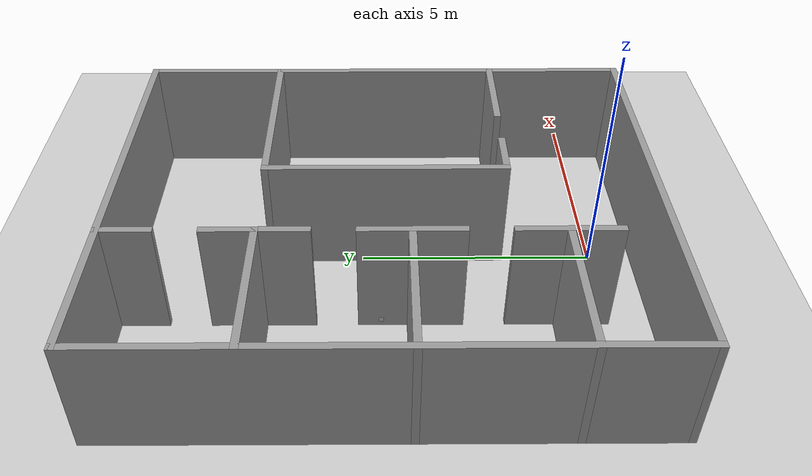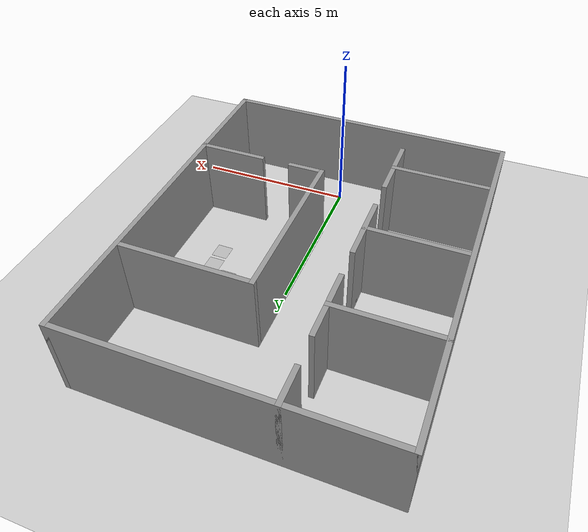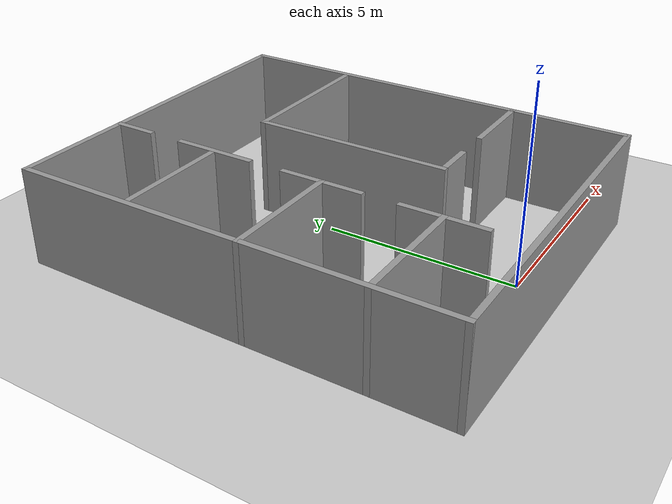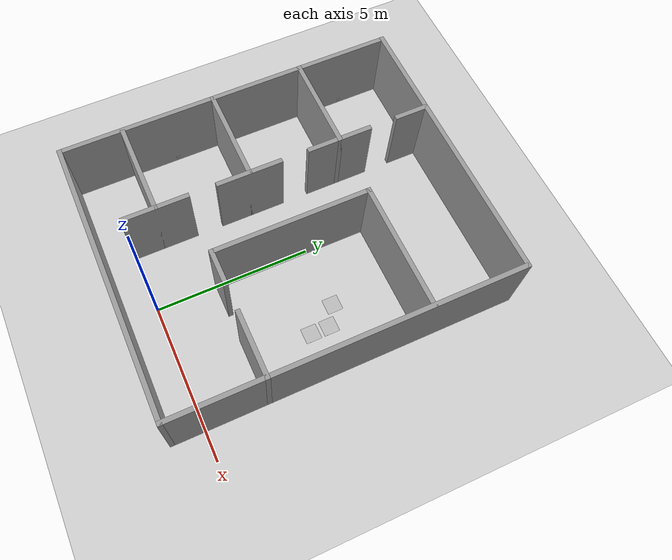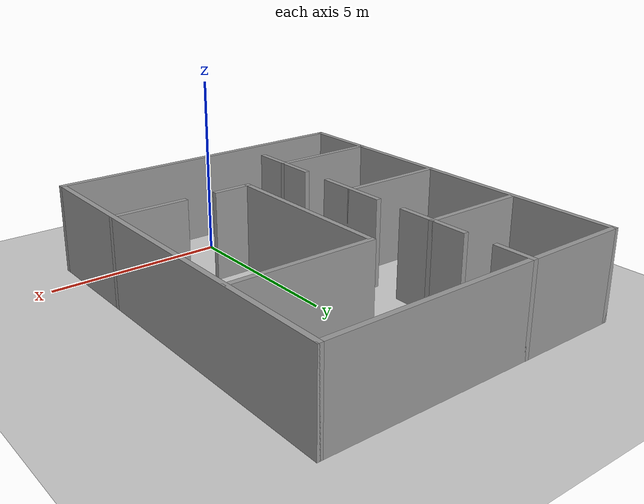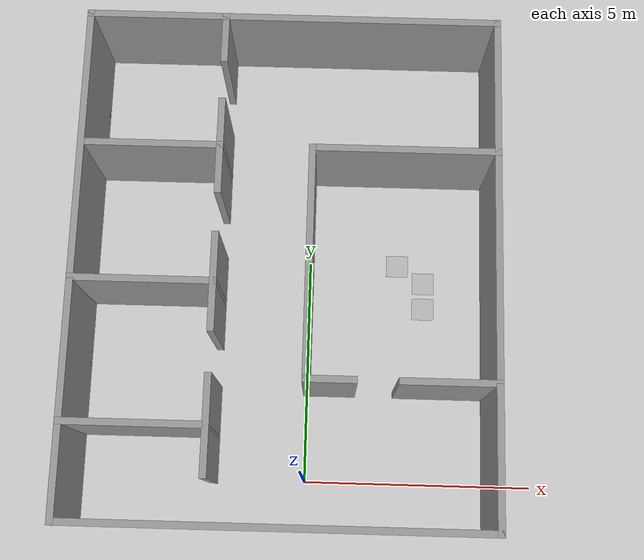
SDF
<sdf version="1.7">
 <world name="default">
  <light name="sun" type="directional">
   <pose>0 0 10 0 -0 0</pose>
   <diffuse>0.8 0.8 0.8 1</diffuse>
   <specular>0.2 0.2 0.2 1</specular>
   <attenuation>
    <range>1000</range>
    <constant>0.9</constant>
    <linear>0.01</linear>
    <quadratic>0.001</quadratic>
   </attenuation>
   <direction>-0.5 0.1 -0.9</direction>
   <spot><inner_angle>0</inner_angle><outer_angle>0</outer_angle><falloff>0</falloff></spot>
  </light>
  <model name="ground_plane">
   <static>1</static>
   <link name="link">
    <collision name="collision">
     <geometry><plane><normal>0 0 1</normal><size>100 100</size></plane></geometry>
     <surface>
      <contact><collide_bitmask>65535</collide_bitmask></contact>
      <friction><ode><mu>100</mu><mu2>50</mu2></ode></friction>
     </surface>
    </collision>
    <visual name="visual">
     <cast_shadows>0</cast_shadows>
     <geometry><plane><normal>0 0 1</normal><size>100 100</size></plane></geometry>
     <material>
      <script><uri>file://media/materials/scripts/gazebo.material</uri><name>Gazebo/Grey</name></script>
     </material>
    </visual>
   </link>
  </model>
  <gravity>0 0 -9.8</gravity>
  <magnetic_field>6e-06 2.3e-05 -4.2e-05</magnetic_field>
  <atmosphere type="adiabatic"/>
  <physics type="ode">
   <max_step_size>0.001</max_step_size>
   <real_time_factor>1</real_time_factor>
   <real_time_update_rate>1000</real_time_update_rate>
  </physics>
  <scene><ambient>0.4 0.4 0.4 1</ambient><background>0.7 0.7 0.7 1</background><shadows>1</shadows></scene>
  <spherical_coordinates>
   <surface_model>EARTH_WGS84</surface_model>
   <latitude_deg>0</latitude_deg>
   <longitude_deg>0</longitude_deg>
   <elevation>0</elevation>
   <heading_deg>0</heading_deg>
  </spherical_coordinates>
  <model name="myRoom">
   <pose>-0.5 4.5 0 0 -0 0</pose>
   <link name="Wall_0">
    <collision name="Wall_0_Collision">
     <geometry><box><size>11.15 0.15 2.5</size></box></geometry>
     <pose>0 0 1.25 0 -0 0</pose>
    </collision>
    <visual name="Wall_0_Visual">
     <pose>0 0 1.25 0 -0 0</pose>
     <geometry><box><size>11.15 0.15 2.5</size></box></geometry>
     <material>
      <script><uri>file://media/materials/scripts/gazebo.material</uri><name>Gazebo/Grey</name></script>
      <ambient>1 1 1 1</ambient>
     </material>
     <meta><layer>0</layer></meta>
    </visual>
    <pose>-4.5 -0 0 0 -0 1.5708</pose>
   </link>
   <link name="Wall_15">
    <collision name="Wall_15_Collision">
     <geometry><box><size>5.15 0.15 2.5</size></box></geometry>
     <pose>0 0 1.25 0 -0 0</pose>
    </collision>
    <visual name="Wall_15_Visual">
     <pose>0 0 1.25 0 -0 0</pose>
     <geometry><box><size>5.15 0.15 2.5</size></box></geometry>
     <material>
      <script><uri>file://media/materials/scripts/gazebo.material</uri><name>Gazebo/Grey</name></script>
      <ambient>1 1 1 1</ambient>
     </material>
     <meta><layer>0</layer></meta>
    </visual>
    <pose>0.5 -0 0 0 -0 -1.5708</pose>
   </link>
   <link name="Wall_17">
    <collision name="Wall_17_Collision">
     <geometry><box><size>1.15 0.15 2.5</size></box></geometry>
     <pose>0 0 1.25 0 -0 0</pose>
    </collision>
    <visual name="Wall_17_Visual">
     <pose>0 0 1.25 0 -0 0</pose>
     <geometry><box><size>1.15 0.15 2.5</size></box></geometry>
     <material>
      <script><uri>file://media/materials/scripts/gazebo.material</uri><name>Gazebo/Grey</name></script>
      <ambient>1 1 1 1</ambient>
     </material>
     <meta><layer>0</layer></meta>
    </visual>
    <pose>-1.5 5 0 0 -0 -1.5708</pose>
   </link>
   <link name="Wall_19">
    <collision name="Wall_19_Collision">
     <geometry><box><size>3.15 0.15 2.5</size></box></geometry>
     <pose>0 0 1.25 0 -0 0</pose>
    </collision>
    <visual name="Wall_19_Visual">
     <pose>0 0 1.25 0 -0 0</pose>
     <geometry><box><size>3.15 0.15 2.5</size></box></geometry>
     <material>
      <script><uri>file://media/materials/scripts/gazebo.material</uri><name>Gazebo/Grey</name></script>
      <ambient>1 1 1 1</ambient>
     </material>
     <meta><layer>0</layer></meta>
    </visual>
    <pose>-3 2.5 0 0 -0 0</pose>
   </link>
   <link name="Wall_2">
    <collision name="Wall_2_Collision">
     <geometry><box><size>9.15 0.15 2.5</size></box></geometry>
     <pose>0 0 1.25 0 -0 0</pose>
    </collision>
    <visual name="Wall_2_Visual">
     <pose>0 0 1.25 0 -0 0</pose>
     <geometry><box><size>9.15 0.15 2.5</size></box></geometry>
     <material>
      <script><uri>file://media/materials/scripts/gazebo.material</uri><name>Gazebo/Grey</name></script>
      <ambient>1 1 1 1</ambient>
     </material>
     <meta><layer>0</layer></meta>
    </visual>
    <pose>0 5.5 0 0 -0 0</pose>
   </link>
   <link name="Wall_21">
    <collision name="Wall_21_Collision">
     <geometry><box><size>1.15 0.15 2.5</size></box></geometry>
     <pose>0 0 1.25 0 -0 0</pose>
    </collision>
    <visual name="Wall_21_Visual">
     <pose>0 0 1.25 0 -0 0</pose>
     <geometry><box><size>1.15 0.15 2.5</size></box></geometry>
     <material>
      <script><uri>file://media/materials/scripts/gazebo.material</uri><name>Gazebo/Grey</name></script>
      <ambient>1 1 1 1</ambient>
     </material>
     <meta><layer>0</layer></meta>
    </visual>
    <pose>1 -2.5 0 0 -0 0</pose>
   </link>
   <link name="Wall_23">
    <collision name="Wall_23_Collision">
     <geometry><box><size>2.15 0.15 2.5</size></box></geometry>
     <pose>0 0 1.25 0 -0 0</pose>
    </collision>
    <visual name="Wall_23_Visual">
     <pose>0 0 1.25 0 -0 0</pose>
     <geometry><box><size>2.15 0.15 2.5</size></box></geometry>
     <material>
      <script><uri>file://media/materials/scripts/gazebo.material</uri><name>Gazebo/Grey</name></script>
      <ambient>1 1 1 1</ambient>
     </material>
     <meta><layer>0</layer></meta>
    </visual>
    <pose>3.5 -2.5 0 0 -0 3.14159</pose>
   </link>
   <link name="Wall_25">
    <collision name="Wall_25_Collision">
     <geometry><box><size>2.15 0.15 2.5</size></box></geometry>
     <pose>0 0 1.25 0 -0 0</pose>
    </collision>
    <visual name="Wall_25_Visual">
     <pose>0 0 1.25 0 -0 0</pose>
     <geometry><box><size>2.15 0.15 2.5</size></box></geometry>
     <material>
      <script><uri>file://media/materials/scripts/gazebo.material</uri><name>Gazebo/Grey</name></script>
      <ambient>1 1 1 1</ambient>
     </material>
     <meta><layer>0</layer></meta>
    </visual>
    <pose>-1.5 2.5 0 0 -0 -1.5708</pose>
   </link>
   <link name="Wall_27">
    <collision name="Wall_27_Collision">
     <geometry><box><size>3.15 0.15 2.5</size></box></geometry>
     <pose>0 0 1.25 0 -0 0</pose>
    </collision>
    <visual name="Wall_27_Visual">
     <pose>0 0 1.25 0 -0 0</pose>
     <geometry><box><size>3.15 0.15 2.5</size></box></geometry>
     <material>
      <script><uri>file://media/materials/scripts/gazebo.material</uri><name>Gazebo/Grey</name></script>
      <ambient>1 1 1 1</ambient>
     </material>
     <meta><layer>0</layer></meta>
    </visual>
    <pose>-3 -0.5 0 0 -0 0</pose>
   </link>
   <link name="Wall_29">
    <collision name="Wall_29_Collision">
     <geometry><box><size>2.15 0.15 2.5</size></box></geometry>
     <pose>0 0 1.25 0 -0 0</pose>
    </collision>
    <visual name="Wall_29_Visual">
     <pose>0 0 1.25 0 -0 0</pose>
     <geometry><box><size>2.15 0.15 2.5</size></box></geometry>
     <material>
      <script><uri>file://media/materials/scripts/gazebo.material</uri><name>Gazebo/Grey</name></script>
      <ambient>1 1 1 1</ambient>
     </material>
     <meta><layer>0</layer></meta>
    </visual>
    <pose>-1.5 -0.5 0 0 -0 -1.5708</pose>
   </link>
   <link name="Wall_31">
    <collision name="Wall_31_Collision">
     <geometry><box><size>3.15 0.15 2.5</size></box></geometry>
     <pose>0 0 1.25 0 -0 0</pose>
    </collision>
    <visual name="Wall_31_Visual">
     <pose>0 0 1.25 0 -0 0</pose>
     <geometry><box><size>3.15 0.15 2.5</size></box></geometry>
     <material>
      <script><uri>file://media/materials/scripts/gazebo.material</uri><name>Gazebo/Grey</name></script>
      <ambient>1 1 1 1</ambient>
     </material>
     <meta><layer>0</layer></meta>
    </visual>
    <pose>-3 -3.5 0 0 -0 0</pose>
   </link>
   <link name="Wall_33">
    <collision name="Wall_33_Collision">
     <geometry><box><size>2.15 0.15 2.5</size></box></geometry>
     <pose>0 0 1.25 0 -0 0</pose>
    </collision>
    <visual name="Wall_33_Visual">
     <pose>0 0 1.25 0 -0 0</pose>
     <geometry><box><size>2.15 0.15 2.5</size></box></geometry>
     <material>
      <script><uri>file://media/materials/scripts/gazebo.material</uri><name>Gazebo/Grey</name></script>
      <ambient>1 1 1 1</ambient>
     </material>
     <meta><layer>0</layer></meta>
    </visual>
    <pose>-1.5 -3.5 0 0 -0 -1.5708</pose>
   </link>
   <link name="Wall_4">
    <collision name="Wall_4_Collision">
     <geometry><box><size>11.15 0.15 2.5</size></box></geometry>
     <pose>0 0 1.25 0 -0 0</pose>
    </collision>
    <visual name="Wall_4_Visual">
     <pose>0 0 1.25 0 -0 0</pose>
     <geometry><box><size>11.15 0.15 2.5</size></box></geometry>
     <material>
      <script><uri>file://media/materials/scripts/gazebo.material</uri><name>Gazebo/Grey</name></script>
      <ambient>1 1 1 1</ambient>
     </material>
     <meta><layer>0</layer></meta>
    </visual>
    <pose>4.5 -0 0 0 -0 -1.5708</pose>
   </link>
   <link name="Wall_6">
    <collision name="Wall_6_Collision">
     <geometry><box><size>4.15 0.15 2.5</size></box></geometry>
     <pose>0 0 1.25 0 -0 0</pose>
    </collision>
    <visual name="Wall_6_Visual">
     <pose>0 0 1.25 0 -0 0</pose>
     <geometry><box><size>4.15 0.15 2.5</size></box></geometry>
     <material>
      <script><uri>file://media/materials/scripts/gazebo.material</uri><name>Gazebo/Grey</name></script>
      <ambient>1 1 1 1</ambient>
     </material>
     <meta><layer>0</layer></meta>
    </visual>
    <pose>2.5 2.5 0 0 -0 3.14159</pose>
   </link>
   <link name="Wall_8">
    <collision name="Wall_8_Collision">
     <geometry><box><size>9.15 0.15 2.5</size></box></geometry>
     <pose>0 0 1.25 0 -0 0</pose>
    </collision>
    <visual name="Wall_8_Visual">
     <pose>0 0 1.25 0 -0 0</pose>
     <geometry><box><size>9.15 0.15 2.5</size></box></geometry>
     <material>
      <script><uri>file://media/materials/scripts/gazebo.material</uri><name>Gazebo/Grey</name></script>
      <ambient>1 1 1 1</ambient>
     </material>
     <meta><layer>0</layer></meta>
    </visual>
    <pose>0 -5.5 0 0 -0 0</pose>
   </link>
   <static>1</static>
  </model>
  <include>
   <uri>model://marker26_10cm_massless</uri>
   <name>marker26_turtlebot</name>
   <pose>-4.92 2.5 0.17 0 1.5707 0</pose>
  </include>
  <include>
   <uri>model://marker25_10cm_massless</uri>
   <name>marker25_turtlebot</name>
   <pose>-2.08 4.6 0.17 3.1415 1.5707 0</pose>
  </include>
  <include>
   <uri>model://marker24_10cm_massless</uri>
   <name>marker24_turtlebot</name>
   <pose>-4.92 8.5 0.17 0 1.5707 0</pose>
  </include>
  <include>
   <uri>model://marker26_50cm_massless</uri>
   <name>marker26_kuka</name>
   <pose>2.6 4 0.0 0 0 0</pose>
  </include>
  <include>
   <uri>model://marker25_50cm_massless</uri>
   <name>marker25_kuka</name>
   <pose>2 5 0.0 0 0 0</pose>
  </include>
  <include>
   <uri>model://marker24_50cm_massless</uri>
   <name>marker24_kuka</name>
   <pose>2.6 4.6 0.0 0 0 0</pose>
  </include>
 </world>
</sdf>

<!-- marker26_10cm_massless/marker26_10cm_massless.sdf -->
<sdf version="1.4">
  <model name="marker26_10cm">
    <static>1</static>
    <link name="marker">
      <gravity>false</gravity>
      <visual name="visual">
        <geometry>
          <box>
            <size>0.1 0.1 0.001</size>
            <!-- SIZE OF THE MARKER + MARGIN -->
          </box>
        </geometry>
        <material>
          <script>
	    <uri>model://marker26_10cm_massless/material/scripts</uri>
	    <uri>model://marker26_10cm_massless/material/textures</uri>
            <name>Aruco/marker26_10cm</name>
          </script>
        </material>
      </visual>
      <collision name="collision">
        <geometry>
          <box>
            <size>0.1 0.1 0.001</size>
            <!-- SIZE OF THE MARKER + MARGIN -->
          </box>
        </geometry>
      </collision>
    </link>
  </model>
</sdf>

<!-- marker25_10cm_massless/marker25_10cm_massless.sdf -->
<sdf version="1.4">
  <model name="marker25_10cm">
    <static>1</static>
    <link name="marker">
      <gravity>false</gravity>
      <visual name="visual">
        <geometry>
          <box>
            <size>0.1 0.1 0.001</size>
            <!-- SIZE OF THE MARKER + MARGIN -->
          </box>
        </geometry>
        <material>
          <script>
	    <uri>model://marker25_10cm_massless/material/scripts</uri>
	    <uri>model://marker25_10cm_massless/material/textures</uri>
            <name>Aruco/marker25_10cm</name>
          </script>
        </material>
      </visual>
      <collision name="collision">
        <geometry>
          <box>
            <size>0.1 0.1 0.001</size>
            <!-- SIZE OF THE MARKER + MARGIN -->
          </box>
        </geometry>
      </collision>
    </link>
  </model>
</sdf>

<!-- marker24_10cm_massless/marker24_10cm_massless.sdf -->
<sdf version="1.4">
  <model name="marker24_10cm">
    <static>1</static>
    <link name="marker">
      <gravity>false</gravity>
      <visual name="visual">
        <geometry>
          <box>
            <size>0.1 0.1 0.001</size>
            <!-- SIZE OF THE MARKER + MARGIN -->
          </box>
        </geometry>
        <material>
          <script>
	    <uri>model://marker24_10cm_massless/material/scripts</uri>
	    <uri>model://marker24_10cm_massless/material/textures</uri>
            <name>Aruco/marker24_10cm</name>
          </script>
        </material>
      </visual>
      <collision name="collision">
        <geometry>
          <box>
            <size>0.1 0.1 0.001</size>
            <!-- SIZE OF THE MARKER + MARGIN -->
          </box>
        </geometry>
      </collision>
    </link>
  </model>
</sdf>

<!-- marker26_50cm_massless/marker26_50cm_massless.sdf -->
<sdf version="1.4">
  <model name="marker26_50cm">
    <static>1</static>
    <link name="marker">
      <gravity>false</gravity>
      <visual name="visual">
        <geometry>
          <box>
            <size>0.5 0.5 0.001</size>
            <!-- SIZE OF THE MARKER + MARGIN -->
          </box>
        </geometry>
        <material>
          <script>
	    <uri>model://marker26_50cm_massless/material/scripts</uri>
	    <uri>model://marker26_50cm_massless/material/textures</uri>
            <name>Aruco/marker26_50cm</name>
          </script>
        </material>
      </visual>
      <collision name="collision">
        <geometry>
          <box>
            <size>0.5 0.5 0.001</size>
            <!-- SIZE OF THE MARKER + MARGIN -->
          </box>
        </geometry>
      </collision>
    </link>
  </model>
</sdf>

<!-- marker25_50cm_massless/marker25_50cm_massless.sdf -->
<sdf version="1.4">
  <model name="marker25_50cm">
    <static>1</static>
    <link name="marker">
      <gravity>false</gravity>
      <visual name="visual">
        <geometry>
          <box>
            <size>0.5 0.5 0.001</size>
            <!-- SIZE OF THE MARKER + MARGIN -->
          </box>
        </geometry>
        <material>
          <script>
	    <uri>model://marker25_50cm_massless/material/scripts</uri>
	    <uri>model://marker25_50cm_massless/material/textures</uri>
            <name>Aruco/marker25_50cm</name>
          </script>
        </material>
      </visual>
      <collision name="collision">
        <geometry>
          <box>
            <size>0.5 0.5 0.001</size>
            <!-- SIZE OF THE MARKER + MARGIN -->
          </box>
        </geometry>
      </collision>
    </link>
  </model>
</sdf>

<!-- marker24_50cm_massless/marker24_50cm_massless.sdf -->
<sdf version="1.4">
  <model name="marker24_50cm">
    <static>1</static>
    <link name="marker">
      <gravity>false</gravity>
      <visual name="visual">
        <geometry>
          <box>
            <size>0.5 0.5 0.001</size>
            <!-- SIZE OF THE MARKER + MARGIN -->
          </box>
        </geometry>
        <material>
          <script>
	    <uri>model://marker24_50cm_massless/material/scripts</uri>
	    <uri>model://marker24_50cm_massless/material/textures</uri>
            <name>Aruco/marker24_50cm</name>
          </script>
        </material>
      </visual>
      <collision name="collision">
        <geometry>
          <box>
            <size>0.5 0.5 0.001</size>
            <!-- SIZE OF THE MARKER + MARGIN -->
          </box>
        </geometry>
      </collision>
    </link>
  </model>
</sdf>
